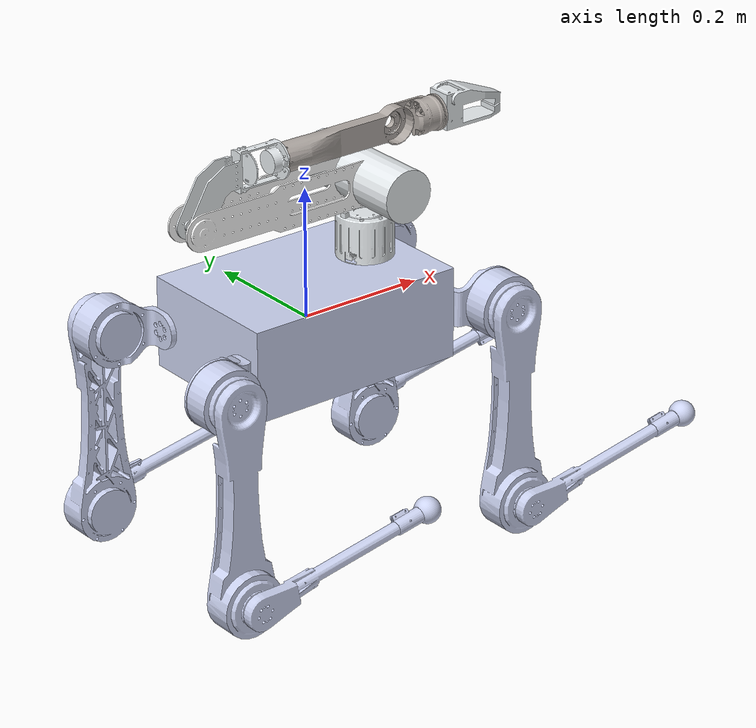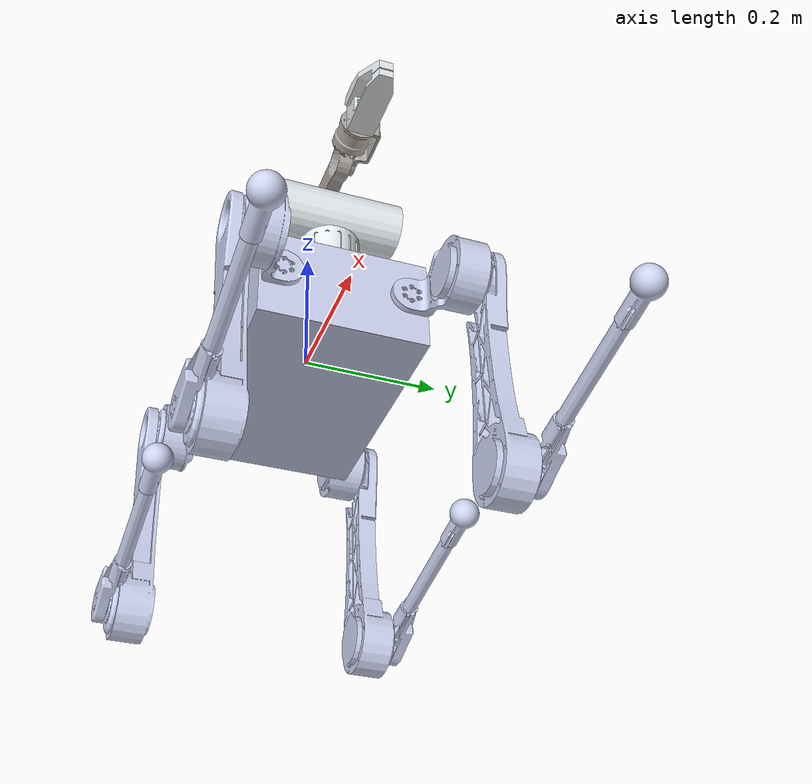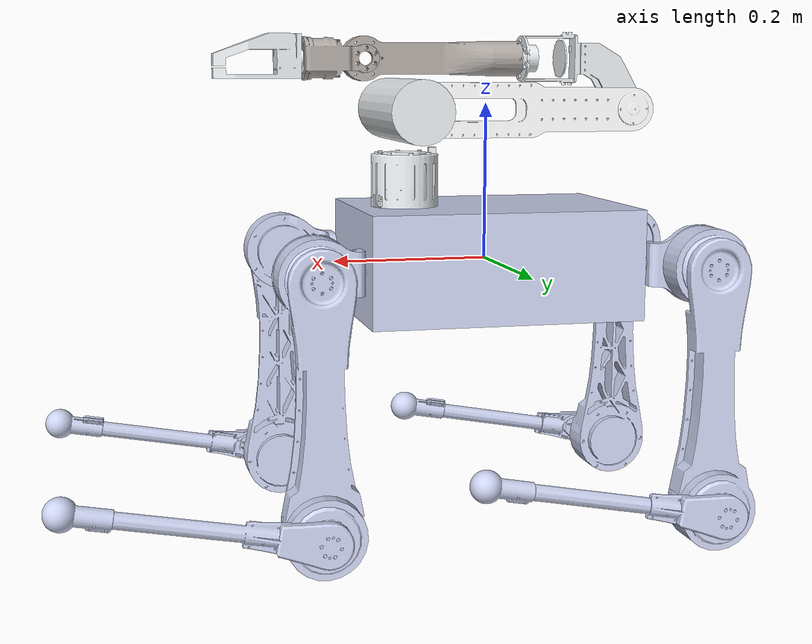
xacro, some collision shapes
<?xml version="1.0"?>

<robot xmlns:xacro="http://www.ros.org/wiki/xacro" name="lion">

    <xacro:include filename="$(find lion_armed_description)/common/transmission.xacro"/>
    <xacro:include filename="$(find lion_armed_description)/common/gazebo.xacro"/>
    <xacro:include filename="$(find lion_armed_description)/common/imu.xacro"/>

    <!--Quadruped Model*******************************************************************************************-->
    <link name="base">
      <inertial>
        <origin rpy="0 0 0" xyz="-0.000638750070817345 -0.00672058356158241 -0.00556735378698432"/>
        <mass value="8.286"/>
        <inertia ixx="0.056529" ixy="-0.001107" ixz="-3.045E-05" iyy="0.14156" iyz="-0.0011531" izz="0.17939"/>
        </inertial>
      <visual>
        <origin rpy="0 0 0" xyz="0 0 0"/>
        <geometry>
          <mesh filename="package://lion_description/meshes/base_link.STL"/>
        </geometry>
        <material name="">
          <color rgba="0.792156862745098 0.819607843137255 0.933333333333333 1"/>
        </material>
      </visual>
      <collision>
        <origin rpy="0 0 0" xyz="0 0 0"/>
        <geometry>
            <box size="0.35 0.24 0.14"/>
        </geometry>
      </collision>
    </link>
    <link name="RF_hip">
      <inertial>
        <origin rpy="0 0 0" xyz="-0.0050797 -0.047183 4.172E-05"/>
        <mass value="1.095"/>
        <inertia ixx="0.0010035" ixy="-0.00021789" ixz="1.433E-06" iyy="0.0014762" iyz="1.005E-06" izz="0.0012507"/>
      </inertial>
      <visual>
        <origin rpy="0 0 0" xyz="0 0 0"/>
        <geometry>
          <mesh filename="package://lion_description/meshes/hip_Link.STL"/>
        </geometry>
        <material name="">
          <color rgba="0.79216 0.81961 0.93333 1"/>
        </material>
      </visual>
      <collision>
        <origin rpy="${pi/2.0} 0 0" xyz="0.0 -0.05 0"/>
        <geometry>
            <cylinder length="0.06" radius="0.05"/>
        </geometry>
      </collision>
    </link>
    <joint name="RF_HAA" type="revolute">
      <origin rpy="0.0 0.0 0 " xyz="0.2467 -0.09 0"/>
      <parent link="base"/>
      <child link="RF_hip"/>
      <axis xyz="1 0 0"/>
      <limit effort="55" lower="-1.0" upper="1.0" velocity="30"/>
    </joint>
    <link name="RF_thigh">
      <inertial>''
        <origin rpy="0 0 0" xyz="-2.7705E-05 -0.089684 -0.23198"/>
        <mass value="1.556"/>
        <inertia ixx="0.015631" ixy="-8.61E-07" ixz="-6.078E-06" iyy="0.016183" iyz="0.0004689" izz="0.0011163"/>
      </inertial>
      <visual>
        <origin rpy="0 0 0" xyz="0 0 0"/>
        <geometry>
          <mesh filename="package://lion_description/meshes/thigh_Link.STL"/>
        </geometry>
        <material name="">
          <color rgba="0.79216 0.81961 0.93333 1"/>
        </material>
      </visual>
      <collision>
        <origin rpy="${pi/2.0} 0 0" xyz="0 -0.09 -0.3"/>
        <geometry>
            <cylinder length="0.06" radius="0.05"/>
        </geometry>
      </collision>
    </link>
    <joint name="RF_HFE" type="revolute">
      <origin rpy="0 0.0 0" xyz="0 0 0"/>
      <parent link="RF_hip"/>
      <child link="RF_thigh"/>
      <axis xyz="0 1 0"/>
      <limit effort="55" lower="-3.0" upper="3.0" velocity="30"/>
    </joint>
    <link name="RF_calf">
      <inertial>
        <origin rpy="0 0 0" xyz="2.05E-06 -0.12517 -0.080832"/>
        <mass value="0.233"/>
        <inertia ixx="0.0033053" ixy="-3.64E-07" ixz="4.028E-06" iyy="0.0033126" iyz="-0.00013194" izz="4.3236E-05"/>
      </inertial>
      <visual>
        <origin rpy="0 0 0" xyz="0 0 0"/>
        <geometry>
          <mesh filename="package://lion_description/meshes/shank_Link.STL"/>
        </geometry>
        <material name="">
          <color rgba="0.79216 0.81961 0.93333 1"/>
        </material>
      </visual>
      <collision>
        <origin rpy="0 0 0" xyz="0 -0.119 -0.15"/>
        <geometry>
          <cylinder length="0.2" radius="0.01"/>
        </geometry>
      </collision>
    </link>
    <joint name="RF_KFE" type="revolute">
      <origin rpy="0 0 0" xyz="0 0 -0.3"/>
      <parent link="RF_thigh"/>
      <child link="RF_calf"/>
      <axis xyz="0 1 0"/>
      <limit effort="55" lower="-3.0" upper="-0.5" velocity="30"/>
    </joint>
    <link name="RF_FOOT">
    <contact>
        <friction_anchor/>
        <stiffness value="30000.0"/>
        <damping value="1000.0"/>
        <spinning_friction value="0.3"/>
        <lateral_friction value="3.0"/>
      </contact>
      <inertial>
        <origin rpy="0 0 0" xyz="0.0002617 0.00017365 0.0085579"/>
        <mass value="0.01"/>
        <inertia ixx="0.001983" ixy="0.000245" ixz="0.000013"
                  iyy="0.002103" iyz="0.0000015" izz="0.000408"/>
      </inertial>
      <visual>
        <origin rpy="0 0 0" xyz="0 0 0"/>
        <geometry>
          <mesh filename="package://lion_description/meshes/foot_Link.STL"/>
        </geometry>
        <material name="">
          <color rgba="0.79216 0.81961 0.93333 1"/>
        </material>
      </visual>
      <collision>
        <origin rpy="0 0 0" xyz="0 0 0.002"/>
        <geometry>
            <sphere radius="0.02"/>
        </geometry>
      </collision>
    </link>
    <joint name="JointFR_foot" type="fixed">
      <origin rpy="0 0 0" xyz="0 -0.119 -0.3105"/>
      <parent link="RF_calf"/>
      <child link="RF_FOOT"/>
      <axis xyz="0 0 1"/>

    </joint>
    <link name="LF_hip">
      <inertial>
        <origin rpy="0 0 0" xyz="-0.0050797 -0.047183 4.172E-05"/>
        <mass value="1.095"/>
        <inertia ixx="0.0010035" ixy="-0.00021789" ixz="1.433E-06" iyy="0.0014762" iyz="1.005E-06" izz="0.0012507"/>
      </inertial>
      <visual>
        <origin rpy="0 0 0" xyz="0 0 0"/>
        <geometry>
          <mesh filename="package://lion_description/meshes/hip_Link.STL"/>
        </geometry>
        <material name="">
          <color rgba="0.79216 0.81961 0.93333 1"/>
        </material>
      </visual>
      <collision>
        <origin rpy="${pi/2.0} 0 0" xyz="0.0 -0.05 0"/>
        <geometry>
            <cylinder length="0.06" radius="0.05"/>
        </geometry>
      </collision>
    </link>
    <joint name="LF_HAA" type="revolute">
      <origin rpy="3.141592653589793 0.0 0 " xyz="0.2467 0.09 0"/>
      <parent link="base"/>
      <child link="LF_hip"/>
      <axis xyz="1 0 0"/>
      <limit effort="55" lower="-1.0" upper="1.0" velocity="30"/>
    </joint>
    <link name="LF_thigh">
      <inertial>
        <origin rpy="0 0 0" xyz="-2.7705E-05 -0.089684 -0.23198"/>
        <mass value="1.556"/>
        <inertia ixx="0.015631" ixy="-8.61E-07" ixz="-6.078E-06" iyy="0.016183" iyz="0.0004689" izz="0.0011163"/>
      </inertial>
      <visual>
        <origin rpy="0 0 0" xyz="0 0 0"/>
        <geometry>
          <mesh filename="package://lion_description/meshes/thigh_Link.STL"/>
        </geometry>
        <material name="">
          <color rgba="0.79216 0.81961 0.93333 1"/>
        </material>
      </visual>
      <collision>
        <origin rpy="${pi/2.0} 0 0" xyz="0 -0.09 -0.3"/>
        <geometry>
            <cylinder length="0.06" radius="0.05"/>
        </geometry>
      </collision>
    </link>
    <joint name="LF_HFE" type="revolute">
      <origin rpy="0 3.141592653589793 0" xyz="0 0 0"/>
      <parent link="LF_hip"/>
      <child link="LF_thigh"/>
      <axis xyz="0 -1 0"/>
      <limit effort="55" lower="-3.0" upper="3.0" velocity="30"/>
    </joint>
    <link name="LF_calf">
      <inertial>
        <origin rpy="0 0 0" xyz="2.05E-06 -0.12517 -0.080832"/>
        <mass value="0.233"/>
        <inertia ixx="0.0033053" ixy="-3.64E-07" ixz="4.028E-06" iyy="0.0033126" iyz="-0.00013194" izz="4.3236E-05"/>
      </inertial>
      <visual>
        <origin rpy="0 0 0" xyz="0 0 0"/>
        <geometry>
          <mesh filename="package://lion_description/meshes/shank_Link.STL"/>
        </geometry>
        <material name="">
          <color rgba="0.79216 0.81961 0.93333 1"/>
        </material>
      </visual>
      <collision>
        <origin rpy="0 0 0" xyz="0 -0.119 -0.15"/>
        <geometry>
          <cylinder length="0.2" radius="0.01"/>
        </geometry>
      </collision>
    </link>
    <joint name="LF_KFE" type="revolute">
      <origin rpy="0 0 0" xyz="0 0 -0.3"/>
      <parent link="LF_thigh"/>
      <child link="LF_calf"/>
      <axis xyz="0 -1 0"/>
      <limit effort="55" lower="-3.0" upper="-0.5" velocity="30"/>
    </joint>
    <link name="LF_FOOT">
    <contact>
        <friction_anchor/>
        <stiffness value="30000.0"/>
        <damping value="1000.0"/>
        <spinning_friction value="0.3"/>
        <lateral_friction value="3.0"/>
      </contact>
      <inertial>
        <origin rpy="0 0 0" xyz="0.0002617 0.00017365 0.0085579"/>
        <mass value="0.01"/>
        <inertia ixx="0.001983" ixy="0.000245" ixz="0.000013"
                  iyy="0.002103" iyz="0.0000015" izz="0.000408"/>
      </inertial>
      <visual>
        <origin rpy="0 0 0" xyz="0 0 0"/>
        <geometry>
          <mesh filename="package://lion_description/meshes/foot_Link.STL"/>
        </geometry>
        <material name="">
          <color rgba="0.79216 0.81961 0.93333 1"/>
        </material>
      </visual>
      <collision>
        <origin rpy="0 0 0" xyz="0 0 0.002"/>
        <geometry>
            <sphere radius="0.02"/>
        </geometry>
      </collision>
    </link>
    <joint name="JointFL_foot" type="fixed">
      <origin rpy="0 0 0" xyz="0 -0.119 -0.3105"/>
      <parent link="LF_calf"/>
      <child link="LF_FOOT"/>
      <axis xyz="0 0 1"/>

    </joint>
    <link name="RH_hip">
      <inertial>
        <origin rpy="0 0 0" xyz="-0.0050797 -0.047183 4.172E-05"/>
        <mass value="1.095"/>
        <inertia ixx="0.0010035" ixy="-0.00021789" ixz="1.433E-06" iyy="0.0014762" iyz="1.005E-06" izz="0.0012507"/>
      </inertial>
      <visual>
        <origin rpy="0 0 0" xyz="0 0 0"/>
        <geometry>
          <mesh filename="package://lion_description/meshes/hip_Link.STL"/>
        </geometry>
        <material name="">
          <color rgba="0.79216 0.81961 0.93333 1"/>
        </material>
      </visual>
      <collision>
        <origin rpy="${pi/2.0} 0 0" xyz="0.0 -0.05 0"/>
        <geometry>
            <cylinder length="0.06" radius="0.05"/>
        </geometry>
      </collision>
    </link>
    <joint name="RH_HAA" type="revolute">
      <origin rpy="0.0 3.141592653589793 0 " xyz="-0.2467 -0.09 0"/>
      <parent link="base"/>
      <child link="RH_hip"/>
      <axis xyz="-1 0 0"/>
      <limit effort="55" lower="-1.0" upper="1.0" velocity="30"/>
    </joint>
    <link name="RH_thigh">
      <inertial>
        <origin rpy="0 0 0" xyz="-2.7705E-05 -0.089684 -0.23198"/>
        <mass value="1.556"/>
        <inertia ixx="0.015631" ixy="-8.61E-07" ixz="-6.078E-06" iyy="0.016183" iyz="0.0004689" izz="0.0011163"/>
      </inertial>
      <visual>
        <origin rpy="0 0 0" xyz="0 0 0"/>
        <geometry>
          <mesh filename="package://lion_description/meshes/thigh_Link.STL"/>
        </geometry>
        <material name="">
          <color rgba="0.79216 0.81961 0.93333 1"/>
        </material>
      </visual>
      <collision>
        <origin rpy="${pi/2.0} 0 0" xyz="0 -0.09 -0.3"/>
        <geometry>
            <cylinder length="0.06" radius="0.05"/>
        </geometry>
      </collision>
    </link>
    <joint name="RH_HFE" type="revolute">
      <origin rpy="0 3.141592653589793 0" xyz="0 0 0"/>
      <parent link="RH_hip"/>
      <child link="RH_thigh"/>
      <axis xyz="0 1 0"/>
      <limit effort="55" lower="-3.0" upper="3.0" velocity="30"/>
    </joint>
    <link name="RH_calf">
      <inertial>
        <origin rpy="0 0 0" xyz="2.05E-06 -0.12517 -0.080832"/>
        <mass value="0.233"/>
        <inertia ixx="0.0033053" ixy="-3.64E-07" ixz="4.028E-06" iyy="0.0033126" iyz="-0.00013194" izz="4.3236E-05"/>
      </inertial>
      <visual>
        <origin rpy="0 0 0" xyz="0 0 0"/>
        <geometry>
          <mesh filename="package://lion_description/meshes/shank_Link.STL"/>
        </geometry>
        <material name="">
          <color rgba="0.79216 0.81961 0.93333 1"/>
        </material>
      </visual>
      <collision>
        <origin rpy="0 0 0" xyz="0 -0.119 -0.15"/>
        <geometry>
          <cylinder length="0.2" radius="0.01"/>
        </geometry>
      </collision>
    </link>
    <joint name="RH_KFE" type="revolute">
      <origin rpy="0 0 0" xyz="0 0 -0.3"/>
      <parent link="RH_thigh"/>
      <child link="RH_calf"/>
      <axis xyz="0 1 0"/>
      <limit effort="55" lower="-3.0" upper="-0.5" velocity="30"/>
    </joint>
    <link name="RH_FOOT">
  <contact>
        <friction_anchor/>
        <stiffness value="30000.0"/>
        <damping value="1000.0"/>
        <spinning_friction value="0.3"/>
        <lateral_friction value="3.0"/>
      </contact>
      <inertial>
        <origin rpy="0 0 0" xyz="0.0002617 0.00017365 0.0085579"/>
        <mass value="0.01"/>
        <inertia ixx="0.001983" ixy="0.000245" ixz="0.000013"
                  iyy="0.002103" iyz="0.0000015" izz="0.000408"/>
      </inertial>
      <visual>
        <origin rpy="0 0 0" xyz="0 0 0"/>
        <geometry>
          <mesh filename="package://lion_description/meshes/foot_Link.STL"/>
        </geometry>
        <material name="">
          <color rgba="0.79216 0.81961 0.93333 1"/>
        </material>
      </visual>
      <collision>
        <origin rpy="0 0 0" xyz="0 0 0.002"/>
        <geometry>
            <sphere radius="0.02"/>
        </geometry>
      </collision>
    </link>
    <joint name="JointHR_foot" type="fixed">
      <origin rpy="0 0 0" xyz="0 -0.119 -0.3105"/>
      <parent link="RH_calf"/>
      <child link="RH_FOOT"/>
      <axis xyz="0 0 1"/>

    </joint>
    <link name="LH_hip">
      <inertial>
        <origin rpy="0 0 0" xyz="-0.0050797 -0.047183 4.172E-05"/>
        <mass value="1.095"/>
        <inertia ixx="0.0010035" ixy="-0.00021789" ixz="1.433E-06" iyy="0.0014762" iyz="1.005E-06" izz="0.0012507"/>
      </inertial>
      <visual>
        <origin rpy="0 0 0" xyz="0 0 0"/>
        <geometry>
          <mesh filename="package://lion_description/meshes/hip_Link.STL"/>
        </geometry>
        <material name="">
          <color rgba="0.79216 0.81961 0.93333 1"/>
        </material>
      </visual>
      <collision>
        <origin rpy="${pi/2.0} 0 0" xyz="0.0 -0.05 0"/>
        <geometry>
            <cylinder length="0.06" radius="0.05"/>
        </geometry>
      </collision>
    </link>
    <joint name="LH_HAA" type="revolute">
      <origin rpy="3.141592653589793 3.141592653589793 0 " xyz="-0.2467 0.09 0"/>
      <parent link="base"/>
      <child link="LH_hip"/>
      <axis xyz="-1 0 0"/>
      <limit effort="55" lower="-1.0" upper="1.0" velocity="30"/>
    </joint>
    <link name="LH_thigh">
      <inertial>
        <origin rpy="0 0 0" xyz="-2.7705E-05 -0.089684 -0.23198"/>
        <mass value="1.556"/>
        <inertia ixx="0.015631" ixy="-8.61E-07" ixz="-6.078E-06" iyy="0.016183" iyz="0.0004689" izz="0.0011163"/>
      </inertial>
      <visual>
        <origin rpy="0 0 0" xyz="0 0 0"/>
        <geometry>
          <mesh filename="package://lion_description/meshes/thigh_Link.STL"/>
        </geometry>
        <material name="">
          <color rgba="0.79216 0.81961 0.93333 1"/>
        </material>
      </visual>
      <collision>
        <origin rpy="${pi/2.0} 0 0" xyz="0 -0.09 -0.3"/>
        <geometry>
            <cylinder length="0.06" radius="0.05"/>
        </geometry>
      </collision>
    </link>
    <joint name="LH_HFE" type="revolute">
      <origin rpy="0 6.283185307179586 0" xyz="0 0 0"/>
      <parent link="LH_hip"/>
      <child link="LH_thigh"/>
      <axis xyz="0 -1 0"/>
      <limit effort="55" lower="-3.0" upper="3.0" velocity="30"/>
    </joint>
    <link name="LH_calf">
      <inertial>
        <origin rpy="0 0 0" xyz="2.05E-06 -0.12517 -0.080832"/>
        <mass value="0.233"/>
        <inertia ixx="0.0033053" ixy="-3.64E-07" ixz="4.028E-06" iyy="0.0033126" iyz="-0.00013194" izz="4.3236E-05"/>
      </inertial>
      <visual>
        <origin rpy="0 0 0" xyz="0 0 0"/>
        <geometry>
          <mesh filename="package://lion_description/meshes/shank_Link.STL"/>
        </geometry>
        <material name="">
          <color rgba="0.79216 0.81961 0.93333 1"/>
        </material>
      </visual>
      <collision>
        <origin rpy="0 0 0" xyz="0 -0.119 -0.15"/>
        <geometry>
          <cylinder length="0.2" radius="0.01"/>
        </geometry>
      </collision>
    </link>
    <joint name="LH_KFE" type="revolute">
      <origin rpy="0 0 0" xyz="0 0 -0.3"/>
      <parent link="LH_thigh"/>
      <child link="LH_calf"/>
      <axis xyz="0 -1 0"/>
      <limit effort="55" lower="-3.0" upper="-0.5" velocity="30"/>
    </joint>
    <link name="LH_FOOT">
    <contact>
        <friction_anchor/>
        <stiffness value="30000.0"/>
        <damping value="1000.0"/>
        <spinning_friction value="0.3"/>
        <lateral_friction value="3.0"/>
      </contact>
      <inertial>
        <origin rpy="0 0 0" xyz="0.0002617 0.00017365 0.0085579"/>
        <mass value="0.01"/>
        <inertia ixx="0.001983" ixy="0.000245" ixz="0.000013"
                  iyy="0.002103" iyz="0.0000015" izz="0.000408"/>
      </inertial>
      <visual>
        <origin rpy="0 0 0" xyz="0 0 0"/>
        <geometry>
          <mesh filename="package://lion_description/meshes/foot_Link.STL"/>
        </geometry>
        <material name="">
          <color rgba="0.79216 0.81961 0.93333 1"/>
        </material>
      </visual>
      <collision>
        <origin rpy="0 0 0" xyz="0 0 0.002"/>
        <geometry>
            <sphere radius="0.02"/>
        </geometry>
      </collision>
    </link>
    <joint name="JointHL_foot" type="fixed">
      <origin rpy="0 0 0" xyz="0 -0.119 -0.3105"/>
      <parent link="LH_calf"/>
      <child link="LH_FOOT"/>
      <axis xyz="0 0 1"/>

    </joint>
    <!-- Arm Model ********************************************************************************************************  -->
    <link name="arm_base_link">
    <inertial>
      <origin
        xyz="-2.655E-05 -0.00013067 0.042361"
        rpy="0 0 0" />
      <mass
        value="0.91201" />
      <inertia
        ixx="0.00076553"
        ixy="3.0928E-06"
        ixz="4.0773E-06"
        iyy="0.000762"
        iyz="-3.7031E-06"
        izz="0.00081713" />
    </inertial>
    <visual>
      <origin
        xyz="0 0 0"
        rpy="0 0 0" />
      <geometry>
        <mesh
          filename="package://lion_armed_description/meshes/arm_base_link.STL" />
      </geometry>
      <material
        name="">
        <color
          rgba="0.89804 0.91765 0.92941 1" />
      </material>
    </visual>
    <collision>
      <origin xyz="0 0 0.04" rpy="0 0 0"/>
      <geometry>
        <cylinder length="0.06" radius="0.045"/>
      </geometry>
    </collision>
    </link>
    <joint name="body_arm" type="fixed">
      <origin
        xyz="0.1075 0 0.0635"
        rpy="0 0 0" />
      <parent
        link="base" />
      <child
        link="arm_base_link" />
      <axis
        xyz="0 0 -1" />
      <limit
        lower="0"
        upper="0"
        effort="0"
        velocity="0" />
    </joint>
    <link name="shoulder_link">
      <inertial>
        <origin
          xyz="4.6648E-05 0.00012015 -0.0013725"
          rpy="0 0 0" />
        <mass
          value="1.8076" />
        <inertia
          ixx="0.0070637"
          ixy="-1.1248E-07"
          ixz="4.2676E-06"
          iyy="0.0014085"
          iyz="-1.6705E-06"
          izz="0.0069672" />
      </inertial>
      <visual>
        <origin
          xyz="0 0 0"
          rpy="0 0 0" />
        <geometry>
          <mesh
            filename="package://lion_armed_description/meshes/shoulder_link.STL" />
        </geometry>
        <material
          name="">
          <color
            rgba="0.89804 0.91765 0.92941 1" />
        </material>
      </visual>
      <collision>
        <origin xyz="0 0 0" rpy="${pi/2.0} 0 0" />
        <geometry>
          <cylinder length="0.2" radius="0.04"/>
        </geometry>
      </collision>
    </link>
    <joint name="joint1" type="revolute">
      <origin
        xyz="0 0 0.128"
        rpy="0 0 0" />
      <parent
        link="arm_base_link" />
      <child
        link="shoulder_link" />
      <axis
        xyz="0 0 -1" />
      <dynamics damping="0.1" friction="0.01"/>
      <limit
        lower="-2.618"
        upper="2.618"
        effort="25.0"
        velocity="10.0" />

    </joint>
    <link name="upper_arm_link">
      <inertial>
        <origin
          xyz="-0.16223 -0.00053457 -9.6145E-14"
          rpy="0 0 0" />
        <mass
          value="0.20654" />
        <inertia
          ixx="0.00017354"
          ixy="4.7067E-05"
          ixz="-8.9112E-16"
          iyy="0.0023721"
          iyz="4.6757E-16"
          izz="0.0023909" />
      </inertial>
      <visual>
        <origin
          xyz="0 0 0"
          rpy="0 0 0" />
        <geometry>
          <mesh
            filename="package://lion_armed_description/meshes/upper_arm_link.STL" />
        </geometry>
        <material
          name="">
          <color
            rgba="1 1 1 1" />
        </material>
      </visual>
      <collision>
        <origin xyz="-0.17 0 0" rpy="0 0 0" />
        <geometry>
          <box size="0.25 0.045 0.06"/>
        </geometry>
      </collision>
    </link>
    <joint name="joint2" type="revolute">
      <origin
        xyz="0 0 0"
        rpy="0 0 0" />
      <parent
        link="shoulder_link" />
      <child
        link="upper_arm_link" />
      <axis
        xyz="0 1 0" />
      <dynamics damping="0.1" friction="0.01"/>
      <limit
        lower="0"
        upper="3.665"
        effort="25.0"
        velocity="10.0" />
    </joint>
    <link name="elbow_link">
      <inertial>
        <origin
          xyz="0.0776630957799923 -5.66684882904192E-06 0.0506455368238795"
          rpy="0 0 0" />
        <mass
          value="0.19779615464477" />
        <inertia
          ixx="0.000172309779571075"
          ixy="5.40217940566371E-08"
          ixz="-0.000202557640418278"
          iyy="0.000759104610858122"
          iyz="2.15341009549695E-08"
          izz="0.000636430285987363" />
      </inertial>
      <visual>
        <origin
          xyz="0 0 0"
          rpy="0 0 0" />
        <geometry>
          <mesh
            filename="package://lion_armed_description/meshes/elbow_link.STL" />
        </geometry>
        <material
          name="">
          <color
            rgba="0.898039215686275 0.917647058823529 0.929411764705882 1" />
        </material>
      </visual>
      <collision>
        <origin xyz="0.1 0 0.065" rpy="0 ${pi/2.0} 0" />
        <geometry>
          <cylinder radius="0.025" length="0.09"/>
        </geometry>
      </collision>
    </link>
    <joint name="joint3" type="revolute">
      <origin
        xyz="-0.3 0 0"
        rpy="0 0 0" />
      <parent
        link="upper_arm_link" />
      <child
        link="elbow_link" />
      <axis
        xyz="0 -1 0" />
      <dynamics damping="0.1" friction="0.01"/>
      <limit
        lower="0"
        upper="4.188"
        effort="25.0"
        velocity="10.0" />
    </joint>
    <link name="lower_arm_link">
      <inertial>
        <origin
          xyz="0.259131075077944 0.000561908541381621 1.63162643829207E-06"
          rpy="0 0 0" />
        <mass
          value="0.237992640601958" />
        <inertia
          ixx="8.1971938649496E-05"
          ixy="-1.16251515064919E-05"
          ixz="2.28325579601934E-17"
          iyy="0.00109175485406717"
          iyz="1.11323021885341E-10"
          izz="0.00106324137537677" />
      </inertial>
      <visual>
        <origin
          xyz="0 0 0"
          rpy="0 0 0" />
        <geometry>
          <mesh
            filename="package://lion_armed_description/meshes/lower_arm_link.STL" />
        </geometry>
        <material
          name="">
          <color
            rgba="0.686274509803922 0.658823529411765 0.63921568627451 1" />
        </material>
      </visual>
      <collision>
        <origin xyz="0.27 0 0" rpy="0 0 0" />
        <geometry>
          <box size="0.24 0.025 0.05"/>
        </geometry>
      </collision>
    </link>
    <joint name="joint4" type="revolute">
      <origin
        xyz="0 -4.7023E-05 0.064998"
        rpy="0 0 0" />
      <parent
        link="elbow_link" />
      <child
        link="lower_arm_link" />
      <axis
        xyz="-1 0 0" />
      <limit
        lower="-3."
        upper="3."
        effort="15.0"
        velocity="10.0" />
      <dynamics damping="0.1" friction="0.2"/>
    </joint>
    <link name="wrist_link">
      <inertial>
        <origin
          xyz="0.048236 0.0079922 -2.4907E-05"
          rpy="0 0 0" />
        <mass
          value="0.20482" />
        <inertia
          ixx="0.00010001"
          ixy="2.0576E-05"
          ixz="3.8277E-08"
          iyy="0.00015052"
          iyz="-7.2338E-08"
          izz="0.00017601" />
      </inertial>
      <visual>
        <origin
          xyz="0 0 0"
          rpy="0 0 0" />
        <geometry>
          <mesh
            filename="package://lion_armed_description/meshes/wrist_link.STL" />
        </geometry>
        <material
          name="">
          <color
            rgba="0.68627 0.65882 0.63922 1" />
        </material>
      </visual>
      <collision>
        <origin xyz="0.06 0 0" rpy="0 ${pi/2.0} 0" />
        <geometry>
          <cylinder radius="0.025" length="0.035"/>
        </geometry>
      </collision>
    </link>
    <joint name="joint5" type="revolute">
      <origin
        xyz="0.354 4.7023E-05 0"
        rpy="0 0 0" />
      <parent
        link="lower_arm_link" />
      <child
        link="wrist_link" />
      <axis
        xyz="0 -1 0" />
      <limit
        lower="-1.2"
        upper="1.2"
        effort="15.0"
        velocity="10.0" />
      <dynamics damping="0.1" friction="0.2"/>
    </joint>
    <link name="hand_link">
      <inertial>
        <origin
          xyz="0.12082 -0.00020649 0.0038737"
          rpy="0 0 0" />
        <mass
          value="0.34303" />
        <inertia
          ixx="0.0001455"
          ixy="-1.5454E-06"
          ixz="2.0576E-05"
          iyy="0.00041843"
          iyz="3.6627E-07"
          izz="0.00037382" />
      </inertial>
      <visual>
        <origin
          xyz="0 0 0"
          rpy="0 0 0" />
        <geometry>
          <mesh
            filename="package://lion_armed_description/meshes/hand_link.STL" />
        </geometry>
        <material
          name="">
          <color
            rgba="0.89804 0.91765 0.92941 1" />
        </material>
      </visual>
      <collision>
        <origin xyz="0.135 0.01 0" rpy="0 0 0" />
        <geometry>
          <box size="0.1 0.06 0.05"/>
        </geometry>
      </collision>
    </link>
    <joint name="joint6" type="revolute">
      <origin
        xyz="0 0 0"
        rpy="0 0 0" />
      <parent
        link="wrist_link" />
      <child
        link="hand_link" />
      <axis
        xyz="1 0 0" />
      <limit
        lower="-10."
        upper="10."
        effort="15.0"
        velocity="10.0" />
      <dynamics damping="0.1" friction="0.2"/>
    </joint>

    <xacro:IMU connected_to="base" imu_name="unitree_imu" xyz="0. 0. 0." rpy="0. 0. 0."/>
    <xacro:leg_transmission prefix="RF"/>
    <xacro:leg_transmission prefix="LF"/>
    <xacro:leg_transmission prefix="RH"/>
    <xacro:leg_transmission prefix="LH"/>

    <xacro:arm_transmission num="1"/>
    <xacro:arm_transmission num="2"/>
    <xacro:arm_transmission num="3"/>
    <xacro:arm_transmission num="4"/>
    <xacro:arm_transmission num="5"/>
    <xacro:arm_transmission num="6"/>

</robot>

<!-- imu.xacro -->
<robot xmlns:xacro="http://www.ros.org/wiki/xacro" name="imu">
  <xacro:macro name="IMU" params="connected_to imu_name xyz:='0 0 0' rpy:='0 0 0' ">
    <!-- Imu is fixed to the base link -->
    <joint name="${imu_name}_joint" type="fixed">
      <origin xyz="${xyz}" rpy="${rpy}" />
      <parent link="${connected_to}" />
      <child link="${imu_name}" />
    </joint>
    <!-- Imu link -->
    <link name="${imu_name}">
      <inertial>
        <mass value="0.01" />
        <origin rpy="0 0 0" xyz="0 0 0" />
        <inertia ixx="0.000001" ixy="0" ixz="0" iyy="0.000001" iyz="0" izz="0.000001" />
      </inertial>
      <visual>
        <origin rpy="0 0 0" xyz="0 0 0" />
        <geometry>
          <box size="0.015 0.015 0.004" />
        </geometry>
      </visual>
      <material name="orange">
        <color rgba="255 108 10 255" />
      </material>
    </link>
    <gazebo reference="${imu_name}">
      <material>Gazebo/Orange</material>
    </gazebo>
    <gazebo reference="${imu_name}_joint">
      <disableFixedJointLumping>true</disableFixedJointLumping>
    </gazebo>
  </xacro:macro>
</robot>
